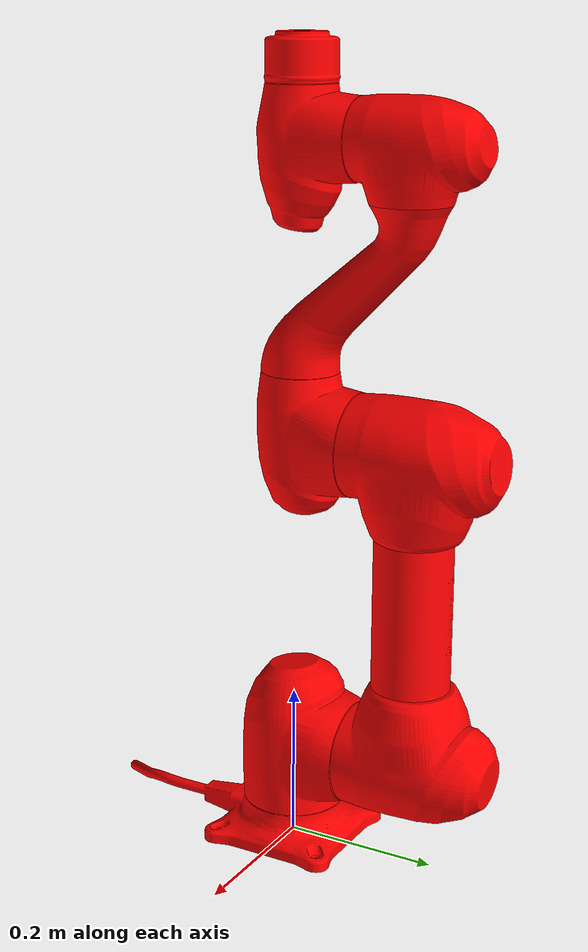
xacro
<?xml version="1.0"?>
<robot xmlns:xacro="http://www.ros.org/wiki/xacro" name="m0609">
    <xacro:arg name="initial_positions_file" default="initial_positions.yaml" />
    <link name="world"/>
    <joint name="world_fixed" type="fixed">
        <origin xyz="0 0 0" rpy="0 0 0"/>
        <parent link="world"/>
        <child link="base_link"/>
    </joint>
    <!-- Import m0609 urdf file -->
    <xacro:include filename="$(find dsr_description2)/urdf/m0609.urdf" />

    <!-- Import m0609 ros2_control description -->

    <xacro:include filename="dsr.ros2_control.xacro" />

    <xacro:dsr_moveit_ros2_control name="DSRFakeSystem" initial_positions_file="$(arg initial_positions_file)"/>
</robot>

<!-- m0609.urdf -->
<robot name="m0609" xmlns:xacro="http://www.ros.org/wiki/xacro">
		<link name="base_link">
			<inertial>
				<mass value="3.18"/>
				<origin xyz="-2.8e-05   -0.006045    0.038403"/>
				<inertia ixx="0.017789" ixy="-7.4356e-06" ixz="3.0378e-06" iyy="0.011135"
					iyz="-0.00029038"
					izz="0.020054"/>
			</inertial>
			<collision>
				<origin rpy="0 0 0" xyz="0 0 0" />
				<geometry>
					<mesh filename="package://dsr_description2/meshes/m0609_collision/MF0609_0_0.dae" scale="0.001 0.001 0.001" />
				</geometry>
			</collision>
			<visual>
				<origin rpy="0 0 0" xyz="0 0 0" />
				<geometry>
					<mesh filename="package://dsr_description2/meshes/m0609_white/MF0609_0_0.dae" scale="0.001 0.001 0.001" />
				</geometry>
			</visual>
		</link>
		<link name="base"/>
		<joint name="base_link-base" type="fixed">
			<origin rpy="0 0 0" xyz="0 0 0.450"/>
			<parent link="base_link"/>
			<child link="base"/>
		</joint>
		<!-- joint 1 -->
		<joint name="joint_1" type="revolute">
			<parent link="base_link" />
			<child link="link_1" />
			<origin rpy="0 0 0" xyz="0 0 0.1345" />
			<axis xyz="0 0 1" />
			<limit effort="163" lower="-6.2832" upper="6.2832" velocity="2.618"/>
			<dynamics friction="0" />
		</joint>
		<link name="link_1">
			<inertial>
				<mass value="5.02"/>
				<origin xyz="7.2e-05    0.036227   -0.003417"/>
				<inertia ixx="0.026195" ixy="2.3904e-05" ixz="-1.3319e-05" iyy="0.016899"
					iyz="-0.00071987"
					izz="0.022944"/>
			</inertial>
            <collision>
				<origin rpy="0 0 0" xyz="0 0 0" />
				<geometry>
					<mesh filename="package://dsr_description2/meshes/m0609_collision/MF0609_1_0.dae" scale="0.001 0.001 0.001" />
				</geometry>
			</collision>
			<visual>
				<origin rpy="0 0 0" xyz="0 0 0" />
				<geometry>
					<mesh filename="package://dsr_description2/meshes/m0609_white/MF0609_1_0.dae" scale="0.001 0.001 0.001" />
				</geometry>
			</visual>
		</link>
		<!-- joint2 -->
		<joint name="joint_2" type="revolute">
			<parent link="link_1" />
			<child link="link_2" />
			<origin rpy="0 -1.571 -1.571" xyz="0 0.0062 0" />
			<axis xyz="0 0 1" />
			<limit effort="163" lower="-6.2832" upper="6.2832" velocity="2.618"/>
			<dynamics friction="0" />
		</joint>
		<link name="link_2">
			<inertial>
				<mass value="8.04"/>
				<origin xyz="0.20447     2.6e-05     0.16005"/>
				<inertia ixx="0.026743" ixy="-0.00019461" ixz="-0.00058734" iyy="0.30084"
					iyz="-6.7892e-06"
					izz="0.29898"/>
			</inertial>
            <collision>
				<origin rpy="0 0 0" xyz="0 0 0" />
				<geometry>
					<mesh filename="package://dsr_description2/meshes/m0609_collision/MF0609_2_0.dae" scale="0.001 0.001 0.001" />
				</geometry>
			</collision>
			<visual>
				<origin rpy="0 0 0" xyz="0 0 0" />
				<geometry>
					<mesh filename="package://dsr_description2/meshes/m0609_white/MF0609_2_0.dae" scale="0.001 0.001 0.001" />
				</geometry>
			</visual>
			<collision>
				<origin rpy="0 0 0" xyz="0 0 0" />
				<geometry>
					<mesh filename="package://dsr_description2/meshes/m0609_collision/MF0609_2_1.dae" scale="0.001 0.001 0.001" />
				</geometry>
			</collision>
			<visual>
				<origin rpy="0 0 0" xyz="0 0 0" />
				<geometry>
					<mesh filename="package://dsr_description2/meshes/m0609_white/MF0609_2_1.dae" scale="0.001 0.001 0.001" />
				</geometry>
			</visual>
			<collision>
				<origin rpy="0 0 0" xyz="0 0 0" />
				<geometry>
					<mesh filename="package://dsr_description2/meshes/m0609_collision/MF0609_2_2.dae" scale="0.001 0.001 0.001" />
				</geometry>
			</collision>
			<visual>
				<origin rpy="0 0 0" xyz="0 0 0" />
				<geometry>
					<mesh filename="package://dsr_description2/meshes/m0609_white/MF0609_2_2.dae" scale="0.001 0.001 0.001" />
				</geometry>
			</visual>
		</link>
		<!-- joint3 -->
		<joint name="joint_3" type="revolute">
			<parent link="link_2" />
			<child link="link_3" />
			<origin rpy="0 0 1.571" xyz="0.411 0 0" />
			<axis xyz="0 0 1" />
			<limit effort="96" lower="-2.618" upper="2.618" velocity="3.1416"/>
			<dynamics friction="0" />
		</joint>
		<link name="link_3">
			<inertial>
				<mass value="3.6"/>
				<origin xyz="-2.2e-05   -0.006867    0.043445"/>
				<inertia ixx="0.018342" ixy="1.1302e-05" ixz="-4.5308e-06" iyy="0.018239"
					iyz="-0.00099247"
					izz="0.01326"/>
			</inertial>
			<collision>
				<origin rpy="0 0 0" xyz="0 0 0" />
				<geometry>
					<mesh filename="package://dsr_description2/meshes/m0609_collision/MF0609_3_0.dae" scale="0.001 0.001 0.001" />
				</geometry>
			</collision>
			<visual>
				<origin rpy="0 0 0" xyz="0 0 0" />
				<geometry>
					<mesh filename="package://dsr_description2/meshes/m0609_white/MF0609_3_0.dae" scale="0.001 0.001 0.001" />
				</geometry>
			</visual>
		</link>
		<!-- joint4 -->
		<joint name="joint_4" type="revolute">
			<parent link="link_3" />
			<child link="link_4" />
			<origin rpy="1.571 0 0" xyz="0 -0.368 0" />
			<axis xyz="0 0 1" />
			<limit effort="50" lower="-6.2832" upper="6.2832" velocity="3.927"/>
			<dynamics friction="0" />
		</joint>
		<link name="link_4">
			<inertial>
				<mass value="3.57"/>
				<origin xyz="4e-05    0.097079    -0.10981"/>
				<inertia ixx="0.08035" ixy="-4.6119e-06" ixz="-8.1798e-06" iyy="0.066005"
					iyz="-0.028996"
					izz="0.029763"/>
			</inertial>
            <collision>
				<origin rpy="0 0 0" xyz="0 0 0" />
				<geometry>
					<mesh filename="package://dsr_description2/meshes/m0609_collision/MF0609_4_0.dae" scale="0.001 0.001 0.001" />
				</geometry>
			</collision>
			<visual>
				<origin rpy="0 0 0" xyz="0 0 0" />
				<geometry>
					<mesh filename="package://dsr_description2/meshes/m0609_white/MF0609_4_0.dae" scale="0.001 0.001 0.001" />
				</geometry>
			</visual>
			<collision>
				<origin rpy="0 0 0" xyz="0 0 0" />
				<geometry>
					<mesh filename="package://dsr_description2/meshes/m0609_collision/MF0609_4_1.dae" scale="0.001 0.001 0.001" />
				</geometry>
			</collision>
			<visual>
				<origin rpy="0 0 0" xyz="0 0 0" />
				<geometry>
					<mesh filename="package://dsr_description2/meshes/m0609_white/MF0609_4_1.dae" scale="0.001 0.001 0.001" />
				</geometry>
			</visual>
		</link>
		<!-- joint5 -->
		<joint name="joint_5" type="revolute">
			<parent link="link_4" />
			<child link="link_5" />
			<origin rpy="-1.571 0 0" xyz="0 0 0" />
			<axis xyz="0 0 1" />
			<limit effort="50" lower="-6.2832" upper="6.2832" velocity="3.927"/>
			<dynamics friction="0" />
		</joint>
		<link name="link_5">
			<inertial>
				<mass value="2.83"/>
				<origin xyz="-6.8e-05    0.003827    0.031969"/>
				<inertia ixx="0.014275" ixy="2.2026e-05" ixz="3.3017e-06" iyy="0.012569"
					iyz="0.00045077"
					izz="0.0085318"/>
			</inertial>
            <collision>
				<origin rpy="0 0 0" xyz="0 0 0" />
				<geometry>
					<mesh filename="package://dsr_description2/meshes/m0609_collision/MF0609_5_0.dae" scale="0.001 0.001 0.001" />
				</geometry>
			</collision>
			<visual>
				<origin rpy="0 0 0" xyz="0 0 0" />
				<geometry>
					<mesh filename="package://dsr_description2/meshes/m0609_white/MF0609_5_0.dae" scale="0.001 0.001 0.001" />
				</geometry>
			</visual>
		</link>
		<!-- joint6 -->
		<joint name="joint_6" type="revolute">
			<parent link="link_5" />
			<child link="link_6" />
			<origin rpy="1.571 0 0" xyz="0 -0.121 0" />
			<axis xyz="0 0 1" />
			<limit effort="50" lower="-6.2832" upper="6.2832" velocity="3.927"/>
			<dynamics friction="0" />
		</joint>
		<link name="link_6">
			<inertial>
				<mass value="1.16"/>
				<origin xyz="-3e-05    -4.5e-05     -0.0539"/>
				<inertia ixx="0.0080226" ixy="1.371e-06" ixz="6.3578e-06" iyy="0.0053992"
					iyz="7.4676e-06"
					izz="0.0053912"/>
			</inertial>
			<collision>
				<origin rpy="0 0 0" xyz="0 0 0" />
				<geometry>
					<mesh filename="package://dsr_description2/meshes/m0609_collision/MF0609_6_0.dae" scale="0.001 0.001 0.001" />
				</geometry>
			</collision>
			<visual>
				<origin rpy="0 0 0" xyz="0 0 0" />
				<geometry>
					<mesh filename="package://dsr_description2/meshes/m0609_white/MF0609_6_0.dae" scale="0.001 0.001 0.001" />
				</geometry>
			</visual>
		</link>
		<link name="tool0"/>
		<joint name="joint_6-tool0" type="fixed">
			<origin rpy="3.1415926535 -1.570796327 0" xyz="0 0 0"/>
			<parent link="link_6"/>
			<child link="tool0"/>
		</joint>

</robot>
